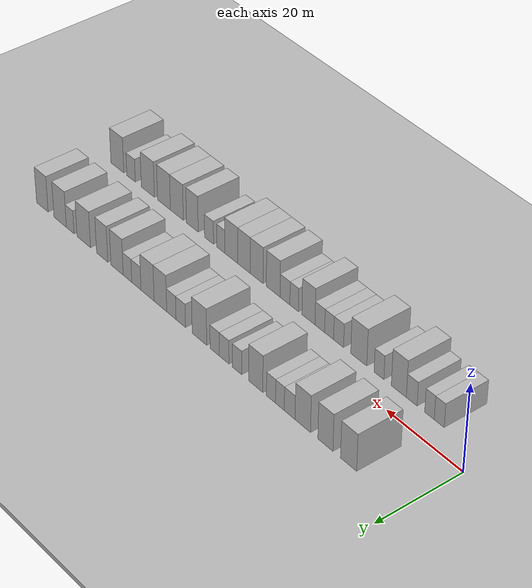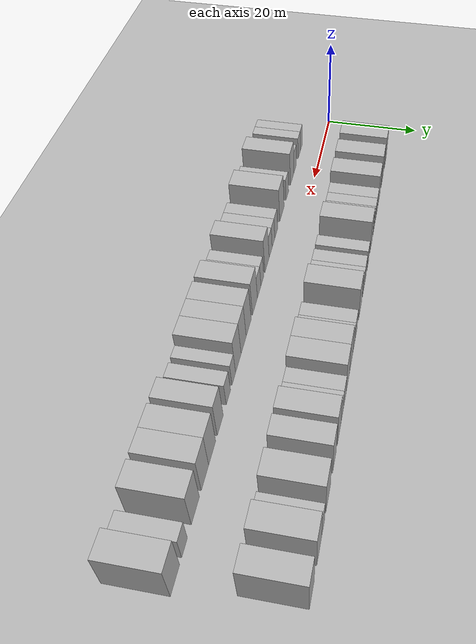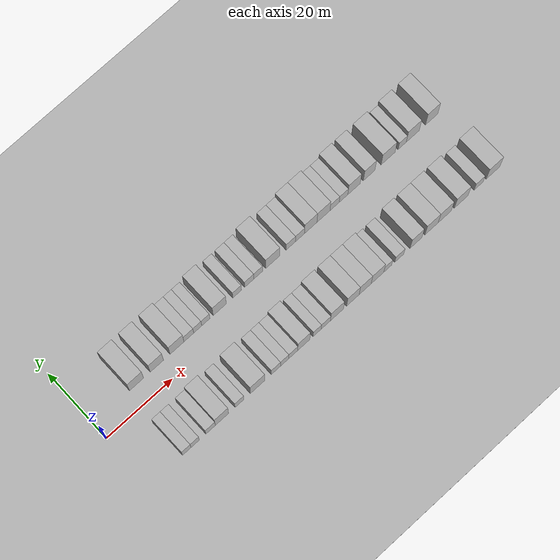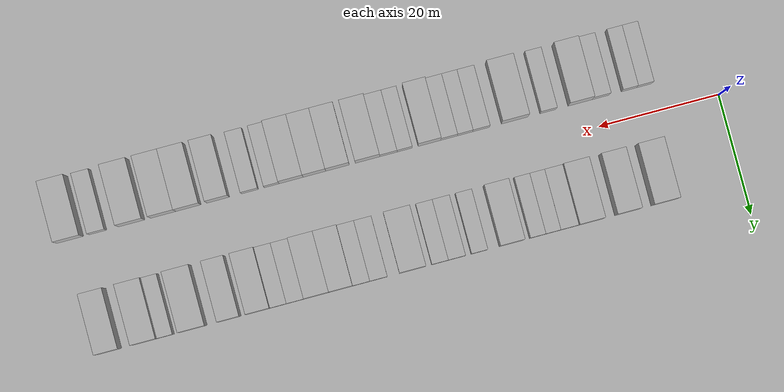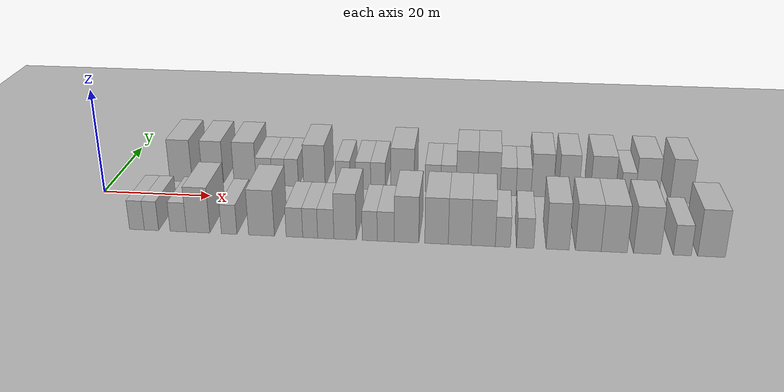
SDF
<sdf version="1.6">
 <world name="default">
  <include><name>ground_plane_1</name><uri>model://HANNAS_ground_plane</uri></include>
  <include>
   <name>ground_plane_2</name>
   <uri>model://HANNAS_ground_plane</uri>
   <pose>100 0 0  0 0 0</pose>
  </include>
  <model name="building_1">
   <static>1</static>
   <pose>13.1404 9.5000 0 0.000000 0.000000 1.570796</pose>
   <link name="link">
    <pose>0 0 4.50 0 0 0</pose>
    <collision name="collision"><geometry><box><size>10.0000 4.2808 9.0000</size></box></geometry></collision>
    <visual name="visual">
     <cast_shadows>0</cast_shadows>
     <geometry><box><size>10.0000 4.2808 9.0000</size></box></geometry>
     <material>
      <script>
       <uri>model://HANNAS_wall/materials/scripts</uri>
       <uri>model://HANNAS_wall/materials/textures</uri>
       <name>vrc/HANNAS_wall</name>
      </script>
     </material>
    </visual>
   </link>
  </model>
  <model name="building_2">
   <static>1</static>
   <pose>19.3093 9.5000 0 0.000000 0.000000 1.570796</pose>
   <link name="link">
    <pose>0 0 4.50 0 0 0</pose>
    <collision name="collision"><geometry><box><size>10.0000 4.0569 9.0000</size></box></geometry></collision>
    <visual name="visual">
     <cast_shadows>0</cast_shadows>
     <geometry><box><size>10.0000 4.0569 9.0000</size></box></geometry>
     <material>
      <script>
       <uri>model://HANNAS_wall/materials/scripts</uri>
       <uri>model://HANNAS_wall/materials/textures</uri>
       <name>vrc/HANNAS_wall</name>
      </script>
     </material>
    </visual>
   </link>
  </model>
  <model name="building_3">
   <static>1</static>
   <pose>25.4504 9.5000 0 0.000000 0.000000 1.570796</pose>
   <link name="link">
    <pose>0 0 4.50 0 0 0</pose>
    <collision name="collision"><geometry><box><size>10.0000 4.2252 9.0000</size></box></geometry></collision>
    <visual name="visual">
     <cast_shadows>0</cast_shadows>
     <geometry><box><size>10.0000 4.2252 9.0000</size></box></geometry>
     <material>
      <script>
       <uri>model://HANNAS_wall/materials/scripts</uri>
       <uri>model://HANNAS_wall/materials/textures</uri>
       <name>vrc/HANNAS_wall</name>
      </script>
     </material>
    </visual>
   </link>
  </model>
  <model name="building_4">
   <static>1</static>
   <pose>29.0588 9.5000 0 0.000000 0.000000 1.570796</pose>
   <link name="link">
    <pose>0 0 3.00 0 0 0</pose>
    <collision name="collision"><geometry><box><size>10.0000 2.9917 6.0000</size></box></geometry></collision>
    <visual name="visual">
     <cast_shadows>0</cast_shadows>
     <geometry><box><size>10.0000 2.9917 6.0000</size></box></geometry>
     <material>
      <script>
       <uri>model://HANNAS_wall/materials/scripts</uri>
       <uri>model://HANNAS_wall/materials/textures</uri>
       <name>vrc/HANNAS_wall</name>
      </script>
     </material>
    </visual>
   </link>
  </model>
  <model name="building_5">
   <static>1</static>
   <pose>31.7879 9.5000 0 0.000000 0.000000 1.570796</pose>
   <link name="link">
    <pose>0 0 3.00 0 0 0</pose>
    <collision name="collision"><geometry><box><size>10.0000 2.4665 6.0000</size></box></geometry></collision>
    <visual name="visual">
     <cast_shadows>0</cast_shadows>
     <geometry><box><size>10.0000 2.4665 6.0000</size></box></geometry>
     <material>
      <script>
       <uri>model://HANNAS_wall/materials/scripts</uri>
       <uri>model://HANNAS_wall/materials/textures</uri>
       <name>vrc/HANNAS_wall</name>
      </script>
     </material>
    </visual>
   </link>
  </model>
  <model name="building_6">
   <static>1</static>
   <pose>34.2926 9.5000 0 0.000000 0.000000 1.570796</pose>
   <link name="link">
    <pose>0 0 3.00 0 0 0</pose>
    <collision name="collision"><geometry><box><size>10.0000 2.5428 6.0000</size></box></geometry></collision>
    <visual name="visual">
     <cast_shadows>0</cast_shadows>
     <geometry><box><size>10.0000 2.5428 6.0000</size></box></geometry>
     <material>
      <script>
       <uri>model://HANNAS_wall/materials/scripts</uri>
       <uri>model://HANNAS_wall/materials/textures</uri>
       <name>vrc/HANNAS_wall</name>
      </script>
     </material>
    </visual>
   </link>
  </model>
  <model name="building_7">
   <static>1</static>
   <pose>38.5831 9.5000 0 0.000000 0.000000 1.570796</pose>
   <link name="link">
    <pose>0 0 4.50 0 0 0</pose>
    <collision name="collision"><geometry><box><size>10.0000 4.0381 9.0000</size></box></geometry></collision>
    <visual name="visual">
     <cast_shadows>0</cast_shadows>
     <geometry><box><size>10.0000 4.0381 9.0000</size></box></geometry>
     <material>
      <script>
       <uri>model://HANNAS_wall/materials/scripts</uri>
       <uri>model://HANNAS_wall/materials/textures</uri>
       <name>vrc/HANNAS_wall</name>
      </script>
     </material>
    </visual>
   </link>
  </model>
  <model name="building_8">
   <static>1</static>
   <pose>43.9458 9.5000 0 0.000000 0.000000 1.570796</pose>
   <link name="link">
    <pose>0 0 3.00 0 0 0</pose>
    <collision name="collision"><geometry><box><size>10.0000 2.6873 6.0000</size></box></geometry></collision>
    <visual name="visual">
     <cast_shadows>0</cast_shadows>
     <geometry><box><size>10.0000 2.6873 6.0000</size></box></geometry>
     <material>
      <script>
       <uri>model://HANNAS_wall/materials/scripts</uri>
       <uri>model://HANNAS_wall/materials/textures</uri>
       <name>vrc/HANNAS_wall</name>
      </script>
     </material>
    </visual>
   </link>
  </model>
  <model name="building_9">
   <static>1</static>
   <pose>47.7086 9.5000 0 0.000000 0.000000 1.570796</pose>
   <link name="link">
    <pose>0 0 3.00 0 0 0</pose>
    <collision name="collision"><geometry><box><size>10.0000 2.8384 6.0000</size></box></geometry></collision>
    <visual name="visual">
     <cast_shadows>0</cast_shadows>
     <geometry><box><size>10.0000 2.8384 6.0000</size></box></geometry>
     <material>
      <script>
       <uri>model://HANNAS_wall/materials/scripts</uri>
       <uri>model://HANNAS_wall/materials/textures</uri>
       <name>vrc/HANNAS_wall</name>
      </script>
     </material>
    </visual>
   </link>
  </model>
  <model name="building_10">
   <static>1</static>
   <pose>50.4885 9.5000 0 0.000000 0.000000 1.570796</pose>
   <link name="link">
    <pose>0 0 3.00 0 0 0</pose>
    <collision name="collision"><geometry><box><size>10.0000 2.7214 6.0000</size></box></geometry></collision>
    <visual name="visual">
     <cast_shadows>0</cast_shadows>
     <geometry><box><size>10.0000 2.7214 6.0000</size></box></geometry>
     <material>
      <script>
       <uri>model://HANNAS_wall/materials/scripts</uri>
       <uri>model://HANNAS_wall/materials/textures</uri>
       <name>vrc/HANNAS_wall</name>
      </script>
     </material>
    </visual>
   </link>
  </model>
  <model name="building_11">
   <static>1</static>
   <pose>55.0271 9.5000 0 0.000000 0.000000 1.570796</pose>
   <link name="link">
    <pose>0 0 4.50 0 0 0</pose>
    <collision name="collision"><geometry><box><size>10.0000 4.3558 9.0000</size></box></geometry></collision>
    <visual name="visual">
     <cast_shadows>0</cast_shadows>
     <geometry><box><size>10.0000 4.3558 9.0000</size></box></geometry>
     <material>
      <script>
       <uri>model://HANNAS_wall/materials/scripts</uri>
       <uri>model://HANNAS_wall/materials/textures</uri>
       <name>vrc/HANNAS_wall</name>
      </script>
     </material>
    </visual>
   </link>
  </model>
  <model name="building_12">
   <static>1</static>
   <pose>60.6485 9.5000 0 0.000000 0.000000 1.570796</pose>
   <link name="link">
    <pose>0 0 3.00 0 0 0</pose>
    <collision name="collision"><geometry><box><size>10.0000 2.8870 6.0000</size></box></geometry></collision>
    <visual name="visual">
     <cast_shadows>0</cast_shadows>
     <geometry><box><size>10.0000 2.8870 6.0000</size></box></geometry>
     <material>
      <script>
       <uri>model://HANNAS_wall/materials/scripts</uri>
       <uri>model://HANNAS_wall/materials/textures</uri>
       <name>vrc/HANNAS_wall</name>
      </script>
     </material>
    </visual>
   </link>
  </model>
  <model name="building_13">
   <static>1</static>
   <pose>63.5097 9.5000 0 0.000000 0.000000 1.570796</pose>
   <link name="link">
    <pose>0 0 3.00 0 0 0</pose>
    <collision name="collision"><geometry><box><size>10.0000 2.8355 6.0000</size></box></geometry></collision>
    <visual name="visual">
     <cast_shadows>0</cast_shadows>
     <geometry><box><size>10.0000 2.8355 6.0000</size></box></geometry>
     <material>
      <script>
       <uri>model://HANNAS_wall/materials/scripts</uri>
       <uri>model://HANNAS_wall/materials/textures</uri>
       <name>vrc/HANNAS_wall</name>
      </script>
     </material>
    </visual>
   </link>
  </model>
  <model name="building_14">
   <static>1</static>
   <pose>66.8850 9.5000 0 0.000000 0.000000 1.570796</pose>
   <link name="link">
    <pose>0 0 4.50 0 0 0</pose>
    <collision name="collision"><geometry><box><size>10.0000 3.9152 9.0000</size></box></geometry></collision>
    <visual name="visual">
     <cast_shadows>0</cast_shadows>
     <geometry><box><size>10.0000 3.9152 9.0000</size></box></geometry>
     <material>
      <script>
       <uri>model://HANNAS_wall/materials/scripts</uri>
       <uri>model://HANNAS_wall/materials/textures</uri>
       <name>vrc/HANNAS_wall</name>
      </script>
     </material>
    </visual>
   </link>
  </model>
  <model name="building_15">
   <static>1</static>
   <pose>70.8978 9.5000 0 0.000000 0.000000 1.570796</pose>
   <link name="link">
    <pose>0 0 4.50 0 0 0</pose>
    <collision name="collision"><geometry><box><size>10.0000 4.1103 9.0000</size></box></geometry></collision>
    <visual name="visual">
     <cast_shadows>0</cast_shadows>
     <geometry><box><size>10.0000 4.1103 9.0000</size></box></geometry>
     <material>
      <script>
       <uri>model://HANNAS_wall/materials/scripts</uri>
       <uri>model://HANNAS_wall/materials/textures</uri>
       <name>vrc/HANNAS_wall</name>
      </script>
     </material>
    </visual>
   </link>
  </model>
  <model name="building_16">
   <static>1</static>
   <pose>74.4042 9.5000 0 0.000000 0.000000 1.570796</pose>
   <link name="link">
    <pose>0 0 3.00 0 0 0</pose>
    <collision name="collision"><geometry><box><size>10.0000 2.9024 6.0000</size></box></geometry></collision>
    <visual name="visual">
     <cast_shadows>0</cast_shadows>
     <geometry><box><size>10.0000 2.9024 6.0000</size></box></geometry>
     <material>
      <script>
       <uri>model://HANNAS_wall/materials/scripts</uri>
       <uri>model://HANNAS_wall/materials/textures</uri>
       <name>vrc/HANNAS_wall</name>
      </script>
     </material>
    </visual>
   </link>
  </model>
  <model name="building_17">
   <static>1</static>
   <pose>77.2181 9.5000 0 0.000000 0.000000 1.570796</pose>
   <link name="link">
    <pose>0 0 3.00 0 0 0</pose>
    <collision name="collision"><geometry><box><size>10.0000 2.7256 6.0000</size></box></geometry></collision>
    <visual name="visual">
     <cast_shadows>0</cast_shadows>
     <geometry><box><size>10.0000 2.7256 6.0000</size></box></geometry>
     <material>
      <script>
       <uri>model://HANNAS_wall/materials/scripts</uri>
       <uri>model://HANNAS_wall/materials/textures</uri>
       <name>vrc/HANNAS_wall</name>
      </script>
     </material>
    </visual>
   </link>
  </model>
  <model name="building_18">
   <static>1</static>
   <pose>80.5503 9.5000 0 0.000000 0.000000 1.570796</pose>
   <link name="link">
    <pose>0 0 4.50 0 0 0</pose>
    <collision name="collision"><geometry><box><size>10.0000 3.9388 9.0000</size></box></geometry></collision>
    <visual name="visual">
     <cast_shadows>0</cast_shadows>
     <geometry><box><size>10.0000 3.9388 9.0000</size></box></geometry>
     <material>
      <script>
       <uri>model://HANNAS_wall/materials/scripts</uri>
       <uri>model://HANNAS_wall/materials/textures</uri>
       <name>vrc/HANNAS_wall</name>
      </script>
     </material>
    </visual>
   </link>
  </model>
  <model name="building_19">
   <static>1</static>
   <pose>85.3523 9.5000 0 0.000000 0.000000 1.570796</pose>
   <link name="link">
    <pose>0 0 4.50 0 0 0</pose>
    <collision name="collision"><geometry><box><size>10.0000 3.6652 9.0000</size></box></geometry></collision>
    <visual name="visual">
     <cast_shadows>0</cast_shadows>
     <geometry><box><size>10.0000 3.6652 9.0000</size></box></geometry>
     <material>
      <script>
       <uri>model://HANNAS_wall/materials/scripts</uri>
       <uri>model://HANNAS_wall/materials/textures</uri>
       <name>vrc/HANNAS_wall</name>
      </script>
     </material>
    </visual>
   </link>
  </model>
  <model name="building_20">
   <static>1</static>
   <pose>91.4094 9.5000 0 0.000000 0.000000 1.570796</pose>
   <link name="link">
    <pose>0 0 4.50 0 0 0</pose>
    <collision name="collision"><geometry><box><size>10.0000 4.4489 9.0000</size></box></geometry></collision>
    <visual name="visual">
     <cast_shadows>0</cast_shadows>
     <geometry><box><size>10.0000 4.4489 9.0000</size></box></geometry>
     <material>
      <script>
       <uri>model://HANNAS_wall/materials/scripts</uri>
       <uri>model://HANNAS_wall/materials/textures</uri>
       <name>vrc/HANNAS_wall</name>
      </script>
     </material>
    </visual>
   </link>
  </model>
  <model name="building_21">
   <static>1</static>
   <pose>95.9213 9.5000 0 0.000000 0.000000 1.570796</pose>
   <link name="link">
    <pose>0 0 3.00 0 0 0</pose>
    <collision name="collision"><geometry><box><size>10.0000 2.5750 6.0000</size></box></geometry></collision>
    <visual name="visual">
     <cast_shadows>0</cast_shadows>
     <geometry><box><size>10.0000 2.5750 6.0000</size></box></geometry>
     <material>
      <script>
       <uri>model://HANNAS_wall/materials/scripts</uri>
       <uri>model://HANNAS_wall/materials/textures</uri>
       <name>vrc/HANNAS_wall</name>
      </script>
     </material>
    </visual>
   </link>
  </model>
  <model name="building_22">
   <static>1</static>
   <pose>99.3051 9.5000 0 0.000000 0.000000 1.570796</pose>
   <link name="link">
    <pose>0 0 4.50 0 0 0</pose>
    <collision name="collision"><geometry><box><size>10.0000 4.1926 9.0000</size></box></geometry></collision>
    <visual name="visual">
     <cast_shadows>0</cast_shadows>
     <geometry><box><size>10.0000 4.1926 9.0000</size></box></geometry>
     <material>
      <script>
       <uri>model://HANNAS_wall/materials/scripts</uri>
       <uri>model://HANNAS_wall/materials/textures</uri>
       <name>vrc/HANNAS_wall</name>
      </script>
     </material>
    </visual>
   </link>
  </model>
  <model name="building_23">
   <static>1</static>
   <pose>105.3759 9.5000 0 0.000000 0.000000 1.570796</pose>
   <link name="link">
    <pose>0 0 4.50 0 0 0</pose>
    <collision name="collision"><geometry><box><size>10.0000 3.9490 9.0000</size></box></geometry></collision>
    <visual name="visual">
     <cast_shadows>0</cast_shadows>
     <geometry><box><size>10.0000 3.9490 9.0000</size></box></geometry>
     <material>
      <script>
       <uri>model://HANNAS_wall/materials/scripts</uri>
       <uri>model://HANNAS_wall/materials/textures</uri>
       <name>vrc/HANNAS_wall</name>
      </script>
     </material>
    </visual>
   </link>
  </model>
  <model name="building_49">
   <static>1</static>
   <pose>11.2956 -9.5000 0 0.000000 0.000000 1.570796</pose>
   <link name="link">
    <pose>0 0 3.00 0 0 0</pose>
    <collision name="collision"><geometry><box><size>10.0000 2.5912 6.0000</size></box></geometry></collision>
    <visual name="visual">
     <cast_shadows>0</cast_shadows>
     <geometry><box><size>10.0000 2.5912 6.0000</size></box></geometry>
     <material>
      <script>
       <uri>model://HANNAS_wall/materials/scripts</uri>
       <uri>model://HANNAS_wall/materials/textures</uri>
       <name>vrc/HANNAS_wall</name>
      </script>
     </material>
    </visual>
   </link>
  </model>
  <model name="building_50">
   <static>1</static>
   <pose>13.8419 -9.5000 0 0.000000 0.000000 1.570796</pose>
   <link name="link">
    <pose>0 0 3.00 0 0 0</pose>
    <collision name="collision"><geometry><box><size>10.0000 2.5014 6.0000</size></box></geometry></collision>
    <visual name="visual">
     <cast_shadows>0</cast_shadows>
     <geometry><box><size>10.0000 2.5014 6.0000</size></box></geometry>
     <material>
      <script>
       <uri>model://HANNAS_wall/materials/scripts</uri>
       <uri>model://HANNAS_wall/materials/textures</uri>
       <name>vrc/HANNAS_wall</name>
      </script>
     </material>
    </visual>
   </link>
  </model>
  <model name="building_51">
   <static>1</static>
   <pose>18.5242 -9.5000 0 0.000000 0.000000 1.570796</pose>
   <link name="link">
    <pose>0 0 3.00 0 0 0</pose>
    <collision name="collision"><geometry><box><size>10.0000 2.8631 6.0000</size></box></geometry></collision>
    <visual name="visual">
     <cast_shadows>0</cast_shadows>
     <geometry><box><size>10.0000 2.8631 6.0000</size></box></geometry>
     <material>
      <script>
       <uri>model://HANNAS_wall/materials/scripts</uri>
       <uri>model://HANNAS_wall/materials/textures</uri>
       <name>vrc/HANNAS_wall</name>
      </script>
     </material>
    </visual>
   </link>
  </model>
  <model name="building_52">
   <static>1</static>
   <pose>21.9713 -9.5000 0 0.000000 0.000000 1.570796</pose>
   <link name="link">
    <pose>0 0 4.50 0 0 0</pose>
    <collision name="collision"><geometry><box><size>10.0000 4.0310 9.0000</size></box></geometry></collision>
    <visual name="visual">
     <cast_shadows>0</cast_shadows>
     <geometry><box><size>10.0000 4.0310 9.0000</size></box></geometry>
     <material>
      <script>
       <uri>model://HANNAS_wall/materials/scripts</uri>
       <uri>model://HANNAS_wall/materials/textures</uri>
       <name>vrc/HANNAS_wall</name>
      </script>
     </material>
    </visual>
   </link>
  </model>
  <model name="building_53">
   <static>1</static>
   <pose>27.3284 -9.5000 0 0.000000 0.000000 1.570796</pose>
   <link name="link">
    <pose>0 0 3.00 0 0 0</pose>
    <collision name="collision"><geometry><box><size>10.0000 2.6833 6.0000</size></box></geometry></collision>
    <visual name="visual">
     <cast_shadows>0</cast_shadows>
     <geometry><box><size>10.0000 2.6833 6.0000</size></box></geometry>
     <material>
      <script>
       <uri>model://HANNAS_wall/materials/scripts</uri>
       <uri>model://HANNAS_wall/materials/textures</uri>
       <name>vrc/HANNAS_wall</name>
      </script>
     </material>
    </visual>
   </link>
  </model>
  <model name="building_54">
   <static>1</static>
   <pose>32.8850 -9.5000 0 0.000000 0.000000 1.570796</pose>
   <link name="link">
    <pose>0 0 4.50 0 0 0</pose>
    <collision name="collision"><geometry><box><size>10.0000 4.4298 9.0000</size></box></geometry></collision>
    <visual name="visual">
     <cast_shadows>0</cast_shadows>
     <geometry><box><size>10.0000 4.4298 9.0000</size></box></geometry>
     <material>
      <script>
       <uri>model://HANNAS_wall/materials/scripts</uri>
       <uri>model://HANNAS_wall/materials/textures</uri>
       <name>vrc/HANNAS_wall</name>
      </script>
     </material>
    </visual>
   </link>
  </model>
  <model name="building_55">
   <static>1</static>
   <pose>38.5094 -9.5000 0 0.000000 0.000000 1.570796</pose>
   <link name="link">
    <pose>0 0 3.00 0 0 0</pose>
    <collision name="collision"><geometry><box><size>10.0000 2.8189 6.0000</size></box></geometry></collision>
    <visual name="visual">
     <cast_shadows>0</cast_shadows>
     <geometry><box><size>10.0000 2.8189 6.0000</size></box></geometry>
     <material>
      <script>
       <uri>model://HANNAS_wall/materials/scripts</uri>
       <uri>model://HANNAS_wall/materials/textures</uri>
       <name>vrc/HANNAS_wall</name>
      </script>
     </material>
    </visual>
   </link>
  </model>
  <model name="building_56">
   <static>1</static>
   <pose>41.1910 -9.5000 0 0.000000 0.000000 1.570796</pose>
   <link name="link">
    <pose>0 0 3.00 0 0 0</pose>
    <collision name="collision"><geometry><box><size>10.0000 2.5443 6.0000</size></box></geometry></collision>
    <visual name="visual">
     <cast_shadows>0</cast_shadows>
     <geometry><box><size>10.0000 2.5443 6.0000</size></box></geometry>
     <material>
      <script>
       <uri>model://HANNAS_wall/materials/scripts</uri>
       <uri>model://HANNAS_wall/materials/textures</uri>
       <name>vrc/HANNAS_wall</name>
      </script>
     </material>
    </visual>
   </link>
  </model>
  <model name="building_57">
   <static>1</static>
   <pose>43.8399 -9.5000 0 0.000000 0.000000 1.570796</pose>
   <link name="link">
    <pose>0 0 3.00 0 0 0</pose>
    <collision name="collision"><geometry><box><size>10.0000 2.7535 6.0000</size></box></geometry></collision>
    <visual name="visual">
     <cast_shadows>0</cast_shadows>
     <geometry><box><size>10.0000 2.7535 6.0000</size></box></geometry>
     <material>
      <script>
       <uri>model://HANNAS_wall/materials/scripts</uri>
       <uri>model://HANNAS_wall/materials/textures</uri>
       <name>vrc/HANNAS_wall</name>
      </script>
     </material>
    </visual>
   </link>
  </model>
  <model name="building_58">
   <static>1</static>
   <pose>47.0980 -9.5000 0 0.000000 0.000000 1.570796</pose>
   <link name="link">
    <pose>0 0 4.50 0 0 0</pose>
    <collision name="collision"><geometry><box><size>10.0000 3.7628 9.0000</size></box></geometry></collision>
    <visual name="visual">
     <cast_shadows>0</cast_shadows>
     <geometry><box><size>10.0000 3.7628 9.0000</size></box></geometry>
     <material>
      <script>
       <uri>model://HANNAS_wall/materials/scripts</uri>
       <uri>model://HANNAS_wall/materials/textures</uri>
       <name>vrc/HANNAS_wall</name>
      </script>
     </material>
    </visual>
   </link>
  </model>
  <model name="building_59">
   <static>1</static>
   <pose>51.2383 -9.5000 0 0.000000 0.000000 1.570796</pose>
   <link name="link">
    <pose>0 0 3.00 0 0 0</pose>
    <collision name="collision"><geometry><box><size>10.0000 2.5178 6.0000</size></box></geometry></collision>
    <visual name="visual">
     <cast_shadows>0</cast_shadows>
     <geometry><box><size>10.0000 2.5178 6.0000</size></box></geometry>
     <material>
      <script>
       <uri>model://HANNAS_wall/materials/scripts</uri>
       <uri>model://HANNAS_wall/materials/textures</uri>
       <name>vrc/HANNAS_wall</name>
      </script>
     </material>
    </visual>
   </link>
  </model>
  <model name="building_60">
   <static>1</static>
   <pose>53.9419 -9.5000 0 0.000000 0.000000 1.570796</pose>
   <link name="link">
    <pose>0 0 3.00 0 0 0</pose>
    <collision name="collision"><geometry><box><size>10.0000 2.8895 6.0000</size></box></geometry></collision>
    <visual name="visual">
     <cast_shadows>0</cast_shadows>
     <geometry><box><size>10.0000 2.8895 6.0000</size></box></geometry>
     <material>
      <script>
       <uri>model://HANNAS_wall/materials/scripts</uri>
       <uri>model://HANNAS_wall/materials/textures</uri>
       <name>vrc/HANNAS_wall</name>
      </script>
     </material>
    </visual>
   </link>
  </model>
  <model name="building_61">
   <static>1</static>
   <pose>57.4158 -9.5000 0 0.000000 0.000000 1.570796</pose>
   <link name="link">
    <pose>0 0 4.50 0 0 0</pose>
    <collision name="collision"><geometry><box><size>10.0000 4.0583 9.0000</size></box></geometry></collision>
    <visual name="visual">
     <cast_shadows>0</cast_shadows>
     <geometry><box><size>10.0000 4.0583 9.0000</size></box></geometry>
     <material>
      <script>
       <uri>model://HANNAS_wall/materials/scripts</uri>
       <uri>model://HANNAS_wall/materials/textures</uri>
       <name>vrc/HANNAS_wall</name>
      </script>
     </material>
    </visual>
   </link>
  </model>
  <model name="building_62">
   <static>1</static>
   <pose>62.3943 -9.5000 0 0.000000 0.000000 1.570796</pose>
   <link name="link">
    <pose>0 0 4.50 0 0 0</pose>
    <collision name="collision"><geometry><box><size>10.0000 3.8988 9.0000</size></box></geometry></collision>
    <visual name="visual">
     <cast_shadows>0</cast_shadows>
     <geometry><box><size>10.0000 3.8988 9.0000</size></box></geometry>
     <material>
      <script>
       <uri>model://HANNAS_wall/materials/scripts</uri>
       <uri>model://HANNAS_wall/materials/textures</uri>
       <name>vrc/HANNAS_wall</name>
      </script>
     </material>
    </visual>
   </link>
  </model>
  <model name="building_63">
   <static>1</static>
   <pose>66.2269 -9.5000 0 0.000000 0.000000 1.570796</pose>
   <link name="link">
    <pose>0 0 4.50 0 0 0</pose>
    <collision name="collision"><geometry><box><size>10.0000 3.7665 9.0000</size></box></geometry></collision>
    <visual name="visual">
     <cast_shadows>0</cast_shadows>
     <geometry><box><size>10.0000 3.7665 9.0000</size></box></geometry>
     <material>
      <script>
       <uri>model://HANNAS_wall/materials/scripts</uri>
       <uri>model://HANNAS_wall/materials/textures</uri>
       <name>vrc/HANNAS_wall</name>
      </script>
     </material>
    </visual>
   </link>
  </model>
  <model name="building_64">
   <static>1</static>
   <pose>70.0989 -9.5000 0 0.000000 0.000000 1.570796</pose>
   <link name="link">
    <pose>0 0 4.50 0 0 0</pose>
    <collision name="collision"><geometry><box><size>10.0000 3.9775 9.0000</size></box></geometry></collision>
    <visual name="visual">
     <cast_shadows>0</cast_shadows>
     <geometry><box><size>10.0000 3.9775 9.0000</size></box></geometry>
     <material>
      <script>
       <uri>model://HANNAS_wall/materials/scripts</uri>
       <uri>model://HANNAS_wall/materials/textures</uri>
       <name>vrc/HANNAS_wall</name>
      </script>
     </material>
    </visual>
   </link>
  </model>
  <model name="building_65">
   <static>1</static>
   <pose>73.3258 -9.5000 0 0.000000 0.000000 1.570796</pose>
   <link name="link">
    <pose>0 0 3.00 0 0 0</pose>
    <collision name="collision"><geometry><box><size>10.0000 2.4763 6.0000</size></box></geometry></collision>
    <visual name="visual">
     <cast_shadows>0</cast_shadows>
     <geometry><box><size>10.0000 2.4763 6.0000</size></box></geometry>
     <material>
      <script>
       <uri>model://HANNAS_wall/materials/scripts</uri>
       <uri>model://HANNAS_wall/materials/textures</uri>
       <name>vrc/HANNAS_wall</name>
      </script>
     </material>
    </visual>
   </link>
  </model>
  <model name="building_66">
   <static>1</static>
   <pose>76.9820 -9.5000 0 0.000000 0.000000 1.570796</pose>
   <link name="link">
    <pose>0 0 3.00 0 0 0</pose>
    <collision name="collision"><geometry><box><size>10.0000 2.8361 6.0000</size></box></geometry></collision>
    <visual name="visual">
     <cast_shadows>0</cast_shadows>
     <geometry><box><size>10.0000 2.8361 6.0000</size></box></geometry>
     <material>
      <script>
       <uri>model://HANNAS_wall/materials/scripts</uri>
       <uri>model://HANNAS_wall/materials/textures</uri>
       <name>vrc/HANNAS_wall</name>
      </script>
     </material>
    </visual>
   </link>
  </model>
  <model name="building_67">
   <static>1</static>
   <pose>82.2697 -9.5000 0 0.000000 0.000000 1.570796</pose>
   <link name="link">
    <pose>0 0 4.50 0 0 0</pose>
    <collision name="collision"><geometry><box><size>10.0000 3.7393 9.0000</size></box></geometry></collision>
    <visual name="visual">
     <cast_shadows>0</cast_shadows>
     <geometry><box><size>10.0000 3.7393 9.0000</size></box></geometry>
     <material>
      <script>
       <uri>model://HANNAS_wall/materials/scripts</uri>
       <uri>model://HANNAS_wall/materials/textures</uri>
       <name>vrc/HANNAS_wall</name>
      </script>
     </material>
    </visual>
   </link>
  </model>
  <model name="building_68">
   <static>1</static>
   <pose>87.2250 -9.5000 0 0.000000 0.000000 1.570796</pose>
   <link name="link">
    <pose>0 0 4.50 0 0 0</pose>
    <collision name="collision"><geometry><box><size>10.0000 4.1713 9.0000</size></box></geometry></collision>
    <visual name="visual">
     <cast_shadows>0</cast_shadows>
     <geometry><box><size>10.0000 4.1713 9.0000</size></box></geometry>
     <material>
      <script>
       <uri>model://HANNAS_wall/materials/scripts</uri>
       <uri>model://HANNAS_wall/materials/textures</uri>
       <name>vrc/HANNAS_wall</name>
      </script>
     </material>
    </visual>
   </link>
  </model>
  <model name="building_69">
   <static>1</static>
   <pose>91.4062 -9.5000 0 0.000000 0.000000 1.570796</pose>
   <link name="link">
    <pose>0 0 4.50 0 0 0</pose>
    <collision name="collision"><geometry><box><size>10.0000 4.1911 9.0000</size></box></geometry></collision>
    <visual name="visual">
     <cast_shadows>0</cast_shadows>
     <geometry><box><size>10.0000 4.1911 9.0000</size></box></geometry>
     <material>
      <script>
       <uri>model://HANNAS_wall/materials/scripts</uri>
       <uri>model://HANNAS_wall/materials/textures</uri>
       <name>vrc/HANNAS_wall</name>
      </script>
     </material>
    </visual>
   </link>
  </model>
  <model name="building_70">
   <static>1</static>
   <pose>96.6743 -9.5000 0 0.000000 0.000000 1.570796</pose>
   <link name="link">
    <pose>0 0 4.50 0 0 0</pose>
    <collision name="collision"><geometry><box><size>10.0000 4.3452 9.0000</size></box></geometry></collision>
    <visual name="visual">
     <cast_shadows>0</cast_shadows>
     <geometry><box><size>10.0000 4.3452 9.0000</size></box></geometry>
     <material>
      <script>
       <uri>model://HANNAS_wall/materials/scripts</uri>
       <uri>model://HANNAS_wall/materials/textures</uri>
       <name>vrc/HANNAS_wall</name>
      </script>
     </material>
    </visual>
   </link>
  </model>
  <model name="building_71">
   <static>1</static>
   <pose>102.2789 -9.5000 0 0.000000 0.000000 1.570796</pose>
   <link name="link">
    <pose>0 0 3.00 0 0 0</pose>
    <collision name="collision"><geometry><box><size>10.0000 2.8639 6.0000</size></box></geometry></collision>
    <visual name="visual">
     <cast_shadows>0</cast_shadows>
     <geometry><box><size>10.0000 2.8639 6.0000</size></box></geometry>
     <material>
      <script>
       <uri>model://HANNAS_wall/materials/scripts</uri>
       <uri>model://HANNAS_wall/materials/textures</uri>
       <name>vrc/HANNAS_wall</name>
      </script>
     </material>
    </visual>
   </link>
  </model>
  <model name="building_72">
   <static>1</static>
   <pose>106.8956 -9.5000 0 0.000000 0.000000 1.570796</pose>
   <link name="link">
    <pose>0 0 4.50 0 0 0</pose>
    <collision name="collision"><geometry><box><size>10.0000 4.3695 9.0000</size></box></geometry></collision>
    <visual name="visual">
     <cast_shadows>0</cast_shadows>
     <geometry><box><size>10.0000 4.3695 9.0000</size></box></geometry>
     <material>
      <script>
       <uri>model://HANNAS_wall/materials/scripts</uri>
       <uri>model://HANNAS_wall/materials/textures</uri>
       <name>vrc/HANNAS_wall</name>
      </script>
     </material>
    </visual>
   </link>
  </model>
 </world>
</sdf>
